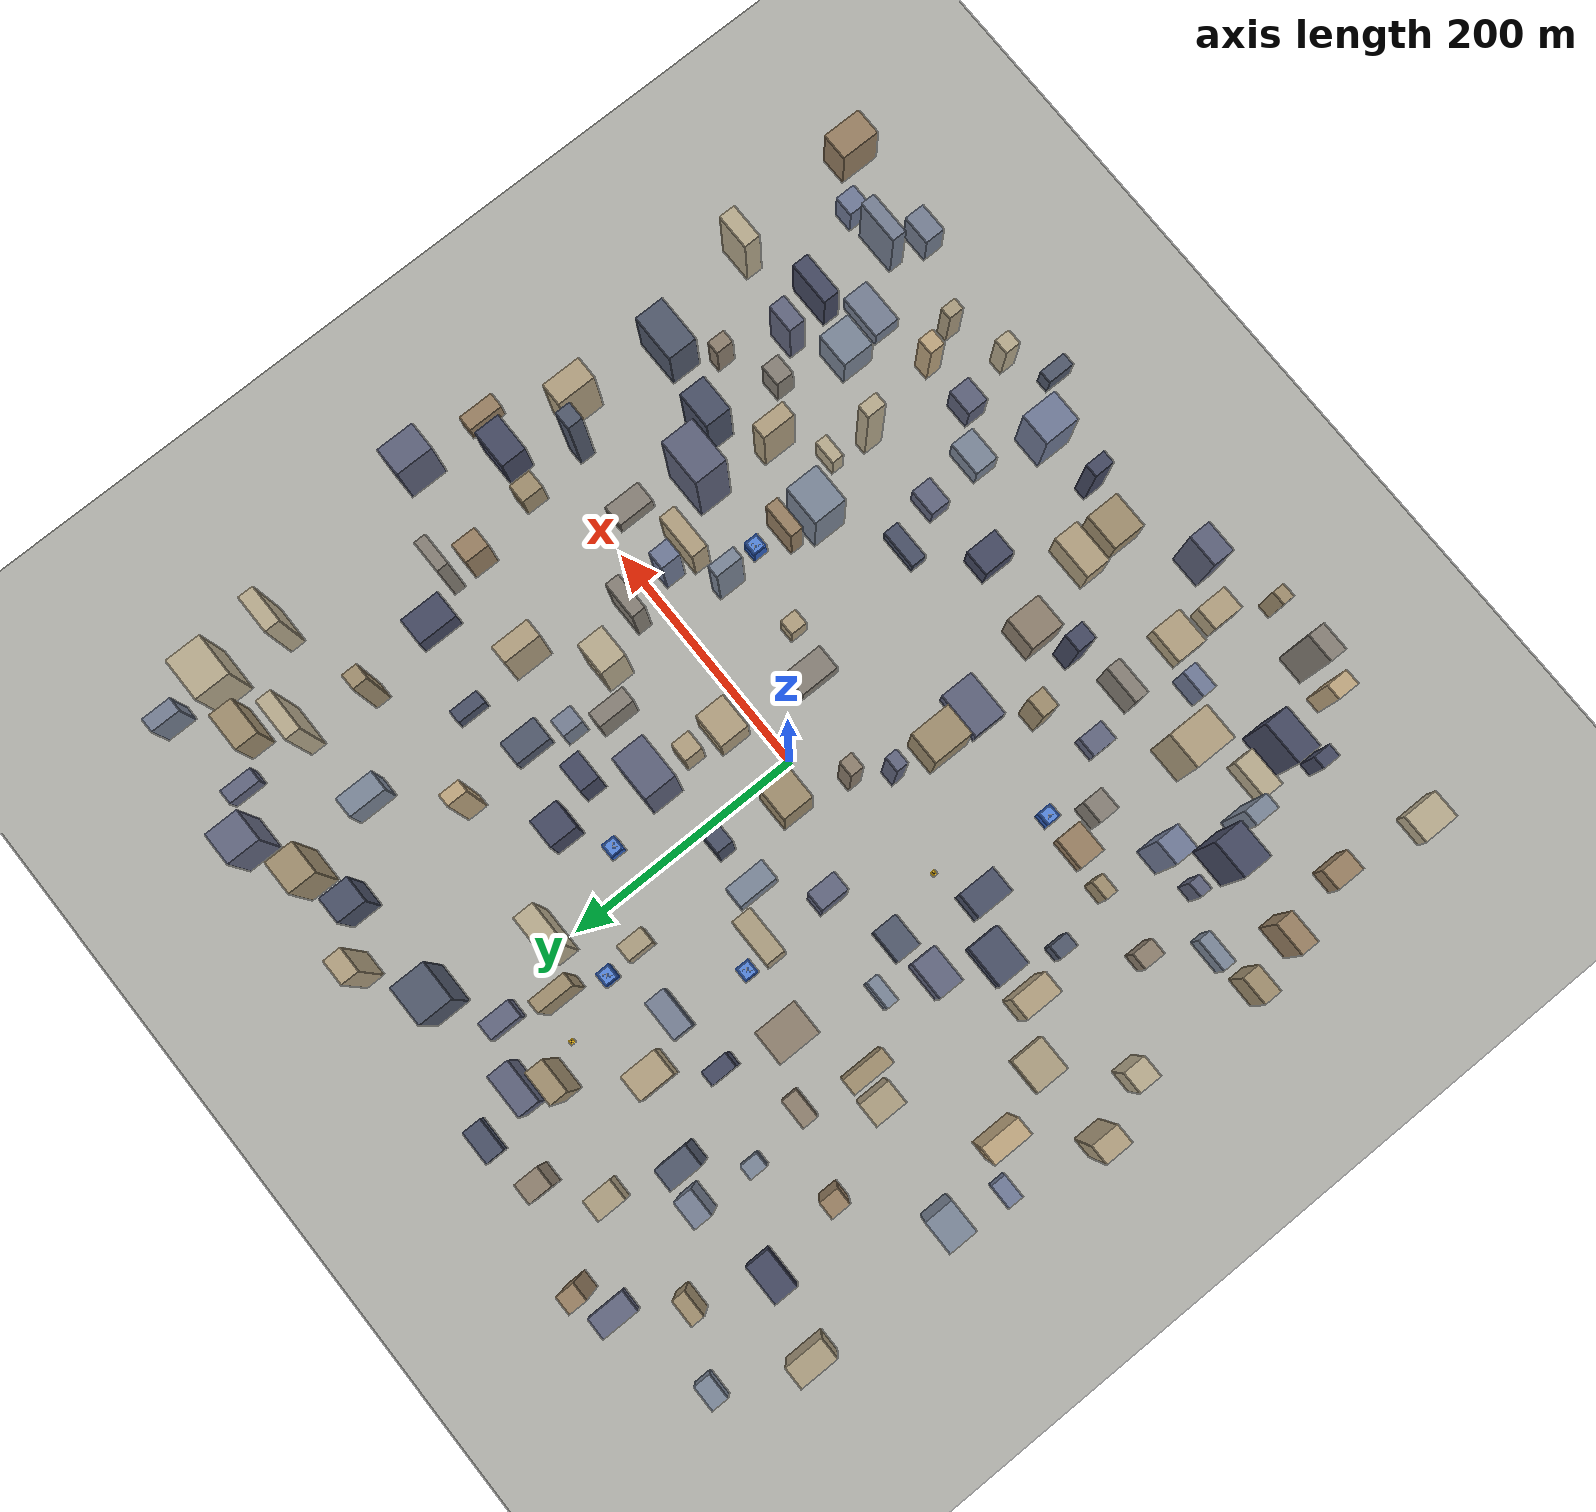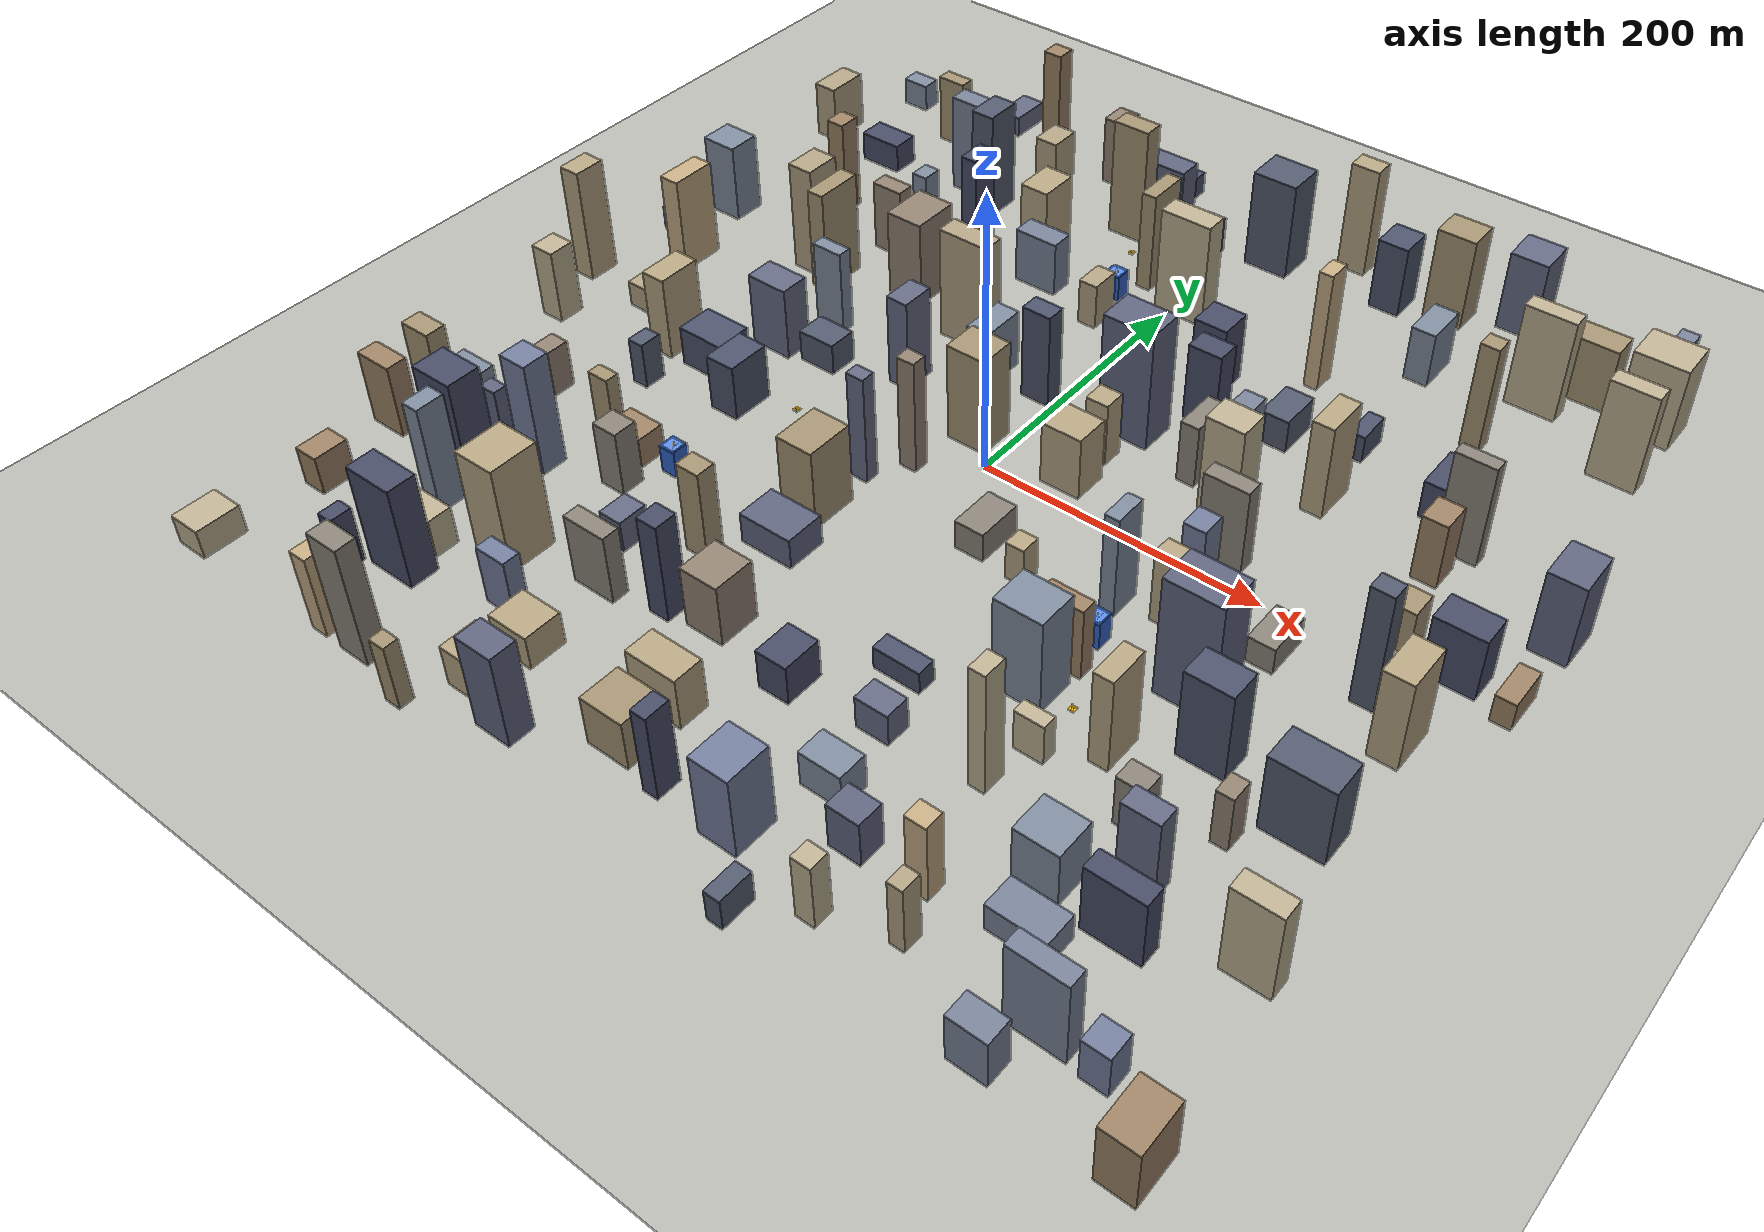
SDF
<sdf version="1.9">
 <world name="city">
  <physics type="ode">
   <max_step_size>0.01</max_step_size>
   <real_time_factor>1.0</real_time_factor>
   <real_time_update_rate>100</real_time_update_rate>
  </physics>
  <gravity>0 0 -9.8</gravity>
  <magnetic_field>6e-06 2.3e-05 -4.2e-05</magnetic_field>
  <atmosphere type="adiabatic"/>
  <scene>
   <grid>false</grid>
   <ambient>0.5 0.5 0.5 1</ambient>
   <background>0.53 0.68 0.87 1</background>
   <shadows>true</shadows>
  </scene>
  <model name="ground_plane">
   <static>true</static>
   <link name="link">
    <collision name="collision">
     <geometry><plane><normal>0 0 1</normal><size>1 1</size></plane></geometry>
    </collision>
    <visual name="visual">
     <geometry><plane><normal>0 0 1</normal><size>2000 2000</size></plane></geometry>
     <material>
      <ambient>0.72 0.72 0.70 1</ambient>
      <diffuse>0.72 0.72 0.70 1</diffuse>
      <specular>0.08 0.08 0.08 1</specular>
     </material>
    </visual>
    <inertial>
     <mass>1</mass>
     <inertia><ixx>1</ixx><ixy>0</ixy><ixz>0</ixz><iyy>1</iyy><iyz>0</iyz><izz>1</izz></inertia>
    </inertial>
   </link>
  </model>
  <light name="sunUTC" type="directional">
   <pose>0 0 500 0 0 0</pose>
   <intensity>1</intensity>
   <direction>0.001 0.625 -0.78</direction>
   <diffuse>0.904 0.904 0.904 1</diffuse>
   <specular>0.271 0.271 0.271 1</specular>
   <attenuation><range>2000</range><linear>0</linear><constant>1</constant><quadratic>0</quadratic></attenuation>
  </light>
  <include><uri>model://city_buildings</uri></include>
  <include><uri>model://brs_station</uri><name>brs_alpha</name><pose>0 150 0 0 0 0</pose></include>
  <include><uri>model://brs_station</uri><name>brs_bravo</name><pose>-130 -30 0 0 0 0</pose></include>
  <include><uri>model://brs_station</uri><name>brs_charlie</name><pose>160 -130 0 0 0 0</pose></include>
  <include><uri>model://brs_station</uri><name>brs_delta</name><pose>-60 250 0 0 0 0</pose></include>
  <include><uri>model://storage_building</uri><name>storage_a</name><pose>30 140 0 0 0 0</pose></include>
  <include><uri>model://storage_building</uri><name>storage_b</name><pose>-100 120 0 0 0 0</pose></include>
  <include><uri>model://storage_building</uri><name>storage_c</name><pose>140 -80 0 0 0 0</pose></include>
  <include><uri>model://storage_building</uri><name>storage_d</name><pose>-150 -120 0 0 0 0</pose></include>
  <include><uri>model://storage_building</uri><name>storage_e</name><pose>-40 200 0 0 0 0</pose></include>
  <spherical_coordinates>
   <surface_model>EARTH_WGS84</surface_model>
   <world_frame_orientation>ENU</world_frame_orientation>
   <latitude_deg>47.397971057728974</latitude_deg>
   <longitude_deg>8.546163739800146</longitude_deg>
   <elevation>0</elevation>
  </spherical_coordinates>
 </world>
</sdf>

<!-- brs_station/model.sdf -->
<sdf version="1.9">
  <model name="brs_station">
    <static>true</static>

    <!-- Base platform — yellow pad 4×4 m, 0.15 m tall -->
    <link name="pad">
      <pose>0 0 0.075 0 0 0</pose>
      <collision name="collision">
        <geometry><box><size>4 4 0.15</size></box></geometry>
      </collision>
      <visual name="visual">
        <geometry><box><size>4 4 0.15</size></box></geometry>
        <material>
          <ambient>0.91 0.71 0.10 1</ambient>
          <diffuse>0.91 0.71 0.10 1</diffuse>
          <specular>0.3 0.3 0.1 1</specular>
        </material>
      </visual>
    </link>

    <!-- Landing H marking — dark stripe (horizontal bar) -->
    <link name="h_bar1">
      <pose>0 0 0.151 0 0 0</pose>
      <visual name="visual">
        <geometry><box><size>2.0 0.3 0.002</size></box></geometry>
        <material>
          <ambient>0.15 0.15 0.15 1</ambient>
          <diffuse>0.15 0.15 0.15 1</diffuse>
        </material>
      </visual>
    </link>

    <!-- H left vertical -->
    <link name="h_left">
      <pose>-0.7 0 0.151 0 0 0</pose>
      <visual name="visual">
        <geometry><box><size>0.3 1.6 0.002</size></box></geometry>
        <material>
          <ambient>0.15 0.15 0.15 1</ambient>
          <diffuse>0.15 0.15 0.15 1</diffuse>
        </material>
      </visual>
    </link>

    <!-- H right vertical -->
    <link name="h_right">
      <pose>0.7 0 0.151 0 0 0</pose>
      <visual name="visual">
        <geometry><box><size>0.3 1.6 0.002</size></box></geometry>
        <material>
          <ambient>0.15 0.15 0.15 1</ambient>
          <diffuse>0.15 0.15 0.15 1</diffuse>
        </material>
      </visual>
    </link>

    <!-- Corner post 1 -->
    <link name="post1">
      <pose>1.8 1.8 0.5 0 0 0</pose>
      <visual name="visual">
        <geometry><cylinder><radius>0.08</radius><length>1.0</length></cylinder></geometry>
        <material>
          <ambient>0.85 0.65 0.05 1</ambient>
          <diffuse>0.85 0.65 0.05 1</diffuse>
        </material>
      </visual>
    </link>

    <!-- Corner post 2 -->
    <link name="post2">
      <pose>-1.8 1.8 0.5 0 0 0</pose>
      <visual name="visual">
        <geometry><cylinder><radius>0.08</radius><length>1.0</length></cylinder></geometry>
        <material>
          <ambient>0.85 0.65 0.05 1</ambient>
          <diffuse>0.85 0.65 0.05 1</diffuse>
        </material>
      </visual>
    </link>

    <!-- Corner post 3 -->
    <link name="post3">
      <pose>1.8 -1.8 0.5 0 0 0</pose>
      <visual name="visual">
        <geometry><cylinder><radius>0.08</radius><length>1.0</length></cylinder></geometry>
        <material>
          <ambient>0.85 0.65 0.05 1</ambient>
          <diffuse>0.85 0.65 0.05 1</diffuse>
        </material>
      </visual>
    </link>

    <!-- Corner post 4 -->
    <link name="post4">
      <pose>-1.8 -1.8 0.5 0 0 0</pose>
      <visual name="visual">
        <geometry><cylinder><radius>0.08</radius><length>1.0</length></cylinder></geometry>
        <material>
          <ambient>0.85 0.65 0.05 1</ambient>
          <diffuse>0.85 0.65 0.05 1</diffuse>
        </material>
      </visual>
    </link>

  </model>
</sdf>

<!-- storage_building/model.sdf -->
<sdf version="1.9">
  <model name="storage_building">
    <static>true</static>

    <!-- Main building body — blue, 12×12 m, 20 m tall -->
    <link name="body">
      <pose>0 0 10 0 0 0</pose>
      <collision name="collision">
        <geometry><box><size>12 12 20</size></box></geometry>
      </collision>
      <visual name="visual">
        <geometry><box><size>12 12 20</size></box></geometry>
        <material>
          <ambient>0.15 0.30 0.65 1</ambient>
          <diffuse>0.20 0.40 0.80 1</diffuse>
          <specular>0.3 0.3 0.4 1</specular>
        </material>
      </visual>
    </link>

    <!-- Rooftop landing pad — lighter blue, 10×10 m -->
    <link name="roof_pad">
      <pose>0 0 20.05 0 0 0</pose>
      <collision name="collision">
        <geometry><box><size>10 10 0.1</size></box></geometry>
      </collision>
      <visual name="visual">
        <geometry><box><size>10 10 0.1</size></box></geometry>
        <material>
          <ambient>0.30 0.50 0.85 1</ambient>
          <diffuse>0.35 0.55 0.90 1</diffuse>
          <specular>0.4 0.4 0.5 1</specular>
        </material>
      </visual>
    </link>

    <!-- Landing cross — white X stripe 1 -->
    <link name="cross1">
      <pose>0 0 20.11 0 0 0.7854</pose>
      <visual name="visual">
        <geometry><box><size>6.0 0.3 0.002</size></box></geometry>
        <material>
          <ambient>0.9 0.9 0.95 1</ambient>
          <diffuse>0.9 0.9 0.95 1</diffuse>
        </material>
      </visual>
    </link>

    <!-- Landing cross — white X stripe 2 -->
    <link name="cross2">
      <pose>0 0 20.11 0 0 -0.7854</pose>
      <visual name="visual">
        <geometry><box><size>6.0 0.3 0.002</size></box></geometry>
        <material>
          <ambient>0.9 0.9 0.95 1</ambient>
          <diffuse>0.9 0.9 0.95 1</diffuse>
        </material>
      </visual>
    </link>

    <!-- Corner beacon 1 — small white post -->
    <link name="beacon1">
      <pose>4.5 4.5 20.35 0 0 0</pose>
      <visual name="visual">
        <geometry><cylinder><radius>0.15</radius><length>0.6</length></cylinder></geometry>
        <material>
          <ambient>0.9 0.9 0.95 1</ambient>
          <diffuse>0.9 0.9 0.95 1</diffuse>
        </material>
      </visual>
    </link>

    <!-- Corner beacon 2 -->
    <link name="beacon2">
      <pose>-4.5 4.5 20.35 0 0 0</pose>
      <visual name="visual">
        <geometry><cylinder><radius>0.15</radius><length>0.6</length></cylinder></geometry>
        <material>
          <ambient>0.9 0.9 0.95 1</ambient>
          <diffuse>0.9 0.9 0.95 1</diffuse>
        </material>
      </visual>
    </link>

    <!-- Corner beacon 3 -->
    <link name="beacon3">
      <pose>4.5 -4.5 20.35 0 0 0</pose>
      <visual name="visual">
        <geometry><cylinder><radius>0.15</radius><length>0.6</length></cylinder></geometry>
        <material>
          <ambient>0.9 0.9 0.95 1</ambient>
          <diffuse>0.9 0.9 0.95 1</diffuse>
        </material>
      </visual>
    </link>

    <!-- Corner beacon 4 -->
    <link name="beacon4">
      <pose>-4.5 -4.5 20.35 0 0 0</pose>
      <visual name="visual">
        <geometry><cylinder><radius>0.15</radius><length>0.6</length></cylinder></geometry>
        <material>
          <ambient>0.9 0.9 0.95 1</ambient>
          <diffuse>0.9 0.9 0.95 1</diffuse>
        </material>
      </visual>
    </link>

  </model>
</sdf>
